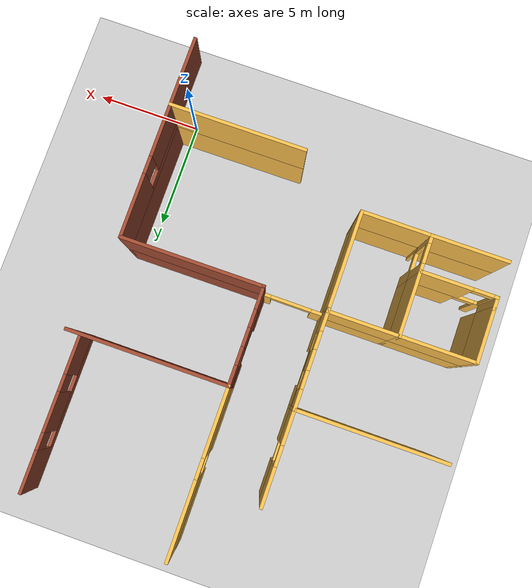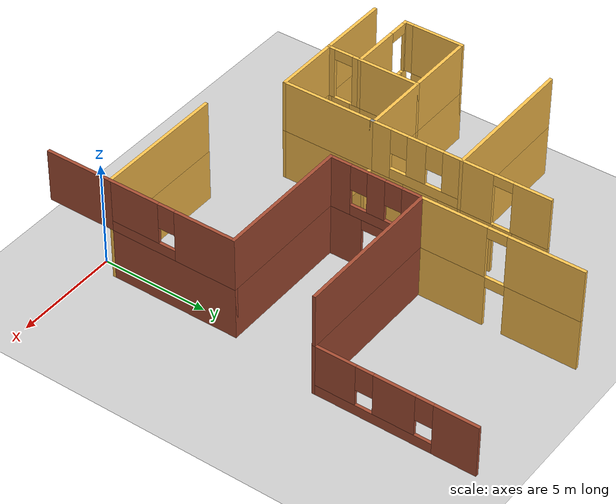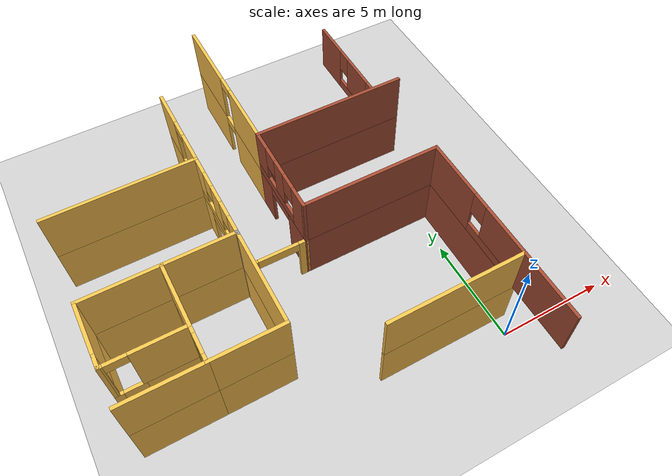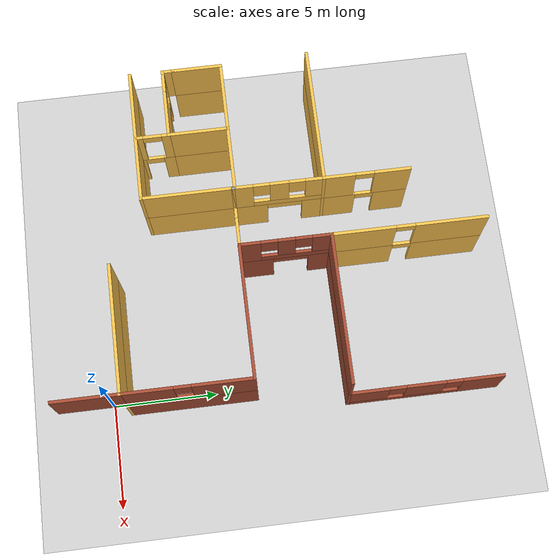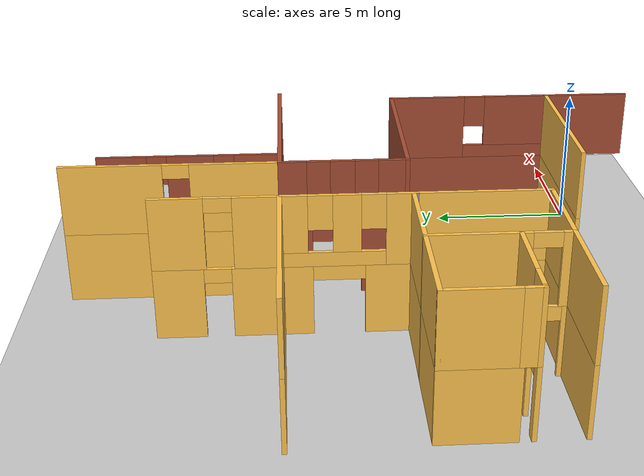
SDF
<sdf version="1.7">
 <world name="default">
  <model name="ground_plane">
   <static>1</static>
   <link name="link">
    <collision name="collision">
     <geometry><plane><normal>0 0 1</normal><size>100 100</size></plane></geometry>
     <surface>
      <contact><collide_bitmask>65535</collide_bitmask></contact>
      <friction><ode><mu>100</mu><mu2>50</mu2></ode></friction>
     </surface>
    </collision>
    <visual name="visual">
     <cast_shadows>0</cast_shadows>
     <geometry><plane><normal>0 0 1</normal><size>100 100</size></plane></geometry>
     <material>
      <script><uri>file://media/materials/scripts/gazebo.material</uri><name>Gazebo/Grey</name></script>
     </material>
    </visual>
   </link>
  </model>
  <model name="DepartmentBuilding">
   <pose>-25.6559 18.8293 0 0 -0 0</pose>
   <link name="Wall_160">
    <collision name="Wall_160_Collision">
     <geometry><box><size>2.5 0.15 2.5</size></box></geometry>
     <pose>0 0 1.25 0 -0 0</pose>
    </collision>
    <visual name="Wall_160_Visual">
     <pose>0 0 1.25 0 -0 0</pose>
     <geometry><box><size>2.5 0.15 2.5</size></box></geometry>
     <material>
      <script><uri>file://media/materials/scripts/gazebo.material</uri><name>Gazebo/Grey</name></script>
      <ambient>1 0.764706 0.305882 1</ambient>
     </material>
     <meta><layer>0</layer></meta>
    </visual>
    <pose>10.4694 -12.9446 0 0 -0 1.5708</pose>
   </link>
   <link name="Wall_161">
    <collision name="Wall_161_Collision">
     <geometry><box><size>3.5 0.15 2.5</size></box></geometry>
     <pose>0 0 1.25 0 -0 0</pose>
    </collision>
    <visual name="Wall_161_Visual">
     <pose>0 0 1.25 0 -0 0</pose>
     <geometry><box><size>3.5 0.15 2.5</size></box></geometry>
     <material>
      <script><uri>file://media/materials/scripts/gazebo.material</uri><name>Gazebo/Grey</name></script>
      <ambient>1 0.764706 0.305882 1</ambient>
     </material>
     <meta><layer>0</layer></meta>
    </visual>
    <pose>12.1444 -11.7696 0 0 -0 0</pose>
   </link>
   <link name="Wall_162">
    <collision name="Wall_162_Collision">
     <geometry><box><size>3 0.15 2.5</size></box></geometry>
     <pose>0 0 1.25 0 -0 0</pose>
    </collision>
    <visual name="Wall_162_Visual">
     <pose>0 0 1.25 0 -0 0</pose>
     <geometry><box><size>3 0.15 2.5</size></box></geometry>
     <material>
      <script><uri>file://media/materials/scripts/gazebo.material</uri><name>Gazebo/Grey</name></script>
      <ambient>1 0.764706 0.305882 1</ambient>
     </material>
     <meta><layer>0</layer></meta>
    </visual>
    <pose>13.8194 -13.1946 0 0 -0 -1.5708</pose>
   </link>
   <link name="Wall_164">
    <pose>12.1444 -14.6196 0 0 -0 3.14159</pose>
    <visual name="Wall_164_Visual_0">
     <pose>-0.632468 0 1.25 0 -0 0</pose>
     <geometry><box><size>2.23506 0.15 2.5</size></box></geometry>
     <material>
      <script><uri>file://media/materials/scripts/gazebo.material</uri><name>Gazebo/Grey</name></script>
      <ambient>1 0.764706 0.305882 1</ambient>
     </material>
     <meta><layer>0</layer></meta>
    </visual>
    <collision name="Wall_164_Collision_0">
     <geometry><box><size>2.23506 0.15 2.5</size></box></geometry>
     <pose>-0.632468 0 1.25 0 -0 0</pose>
    </collision>
    <visual name="Wall_164_Visual_1">
     <pose>1.56753 0 1.25 0 -0 0</pose>
     <geometry><box><size>0.364937 0.15 2.5</size></box></geometry>
     <material>
      <script><uri>file://media/materials/scripts/gazebo.material</uri><name>Gazebo/Grey</name></script>
      <ambient>1 0.764706 0.305882 1</ambient>
     </material>
     <meta><layer>0</layer></meta>
    </visual>
    <collision name="Wall_164_Collision_1">
     <geometry><box><size>0.364937 0.15 2.5</size></box></geometry>
     <pose>1.56753 0 1.25 0 -0 0</pose>
    </collision>
    <visual name="Wall_164_Visual_2">
     <pose>0.935063 0 2.25 0 -0 0</pose>
     <geometry><box><size>0.9 0.15 0.5</size></box></geometry>
     <material>
      <script><uri>file://media/materials/scripts/gazebo.material</uri><name>Gazebo/Grey</name></script>
      <ambient>1 0.764706 0.305882 1</ambient>
     </material>
     <meta><layer>0</layer></meta>
    </visual>
    <collision name="Wall_164_Collision_2">
     <geometry><box><size>0.9 0.15 0.5</size></box></geometry>
     <pose>0.935063 0 2.25 0 -0 0</pose>
    </collision>
   </link>
   <link name="Wall_167">
    <pose>13.8194 -15.4196 0 0 -0 -1.5708</pose>
    <visual name="Wall_167_Visual_0">
     <pose>-0.602589 0 1.25 0 -0 0</pose>
     <geometry><box><size>0.544823 0.15 2.5</size></box></geometry>
     <material>
      <script><uri>file://media/materials/scripts/gazebo.material</uri><name>Gazebo/Grey</name></script>
      <ambient>1 0.764706 0.305882 1</ambient>
     </material>
     <meta><layer>0</layer></meta>
    </visual>
    <collision name="Wall_167_Collision_0">
     <geometry><box><size>0.544823 0.15 2.5</size></box></geometry>
     <pose>-0.602589 0 1.25 0 -0 0</pose>
    </collision>
    <visual name="Wall_167_Visual_1">
     <pose>0.722411 0 1.25 0 -0 0</pose>
     <geometry><box><size>0.305177 0.15 2.5</size></box></geometry>
     <material>
      <script><uri>file://media/materials/scripts/gazebo.material</uri><name>Gazebo/Grey</name></script>
      <ambient>1 0.764706 0.305882 1</ambient>
     </material>
     <meta><layer>0</layer></meta>
    </visual>
    <collision name="Wall_167_Collision_1">
     <geometry><box><size>0.305177 0.15 2.5</size></box></geometry>
     <pose>0.722411 0 1.25 0 -0 0</pose>
    </collision>
    <visual name="Wall_167_Visual_2">
     <pose>0.119823 0 2.25 0 -0 0</pose>
     <geometry><box><size>0.9 0.15 0.5</size></box></geometry>
     <material>
      <script><uri>file://media/materials/scripts/gazebo.material</uri><name>Gazebo/Grey</name></script>
      <ambient>1 0.764706 0.305882 1</ambient>
     </material>
     <meta><layer>0</layer></meta>
    </visual>
    <collision name="Wall_167_Collision_2">
     <geometry><box><size>0.9 0.15 0.5</size></box></geometry>
     <pose>0.119823 0 2.25 0 -0 0</pose>
    </collision>
   </link>
   <link name="Wall_168">
    <collision name="Wall_168_Collision">
     <geometry><box><size>3.5 0.15 2.5</size></box></geometry>
     <pose>0 0 1.25 0 -0 0</pose>
    </collision>
    <visual name="Wall_168_Visual">
     <pose>0 0 1.25 0 -0 0</pose>
     <geometry><box><size>3.5 0.15 2.5</size></box></geometry>
     <material>
      <script><uri>file://media/materials/scripts/gazebo.material</uri><name>Gazebo/Grey</name></script>
      <ambient>1 0.764706 0.305882 1</ambient>
     </material>
     <meta><layer>0</layer></meta>
    </visual>
    <pose>12.1444 -16.2196 0 0 -0 3.14159</pose>
   </link>
   <link name="Wall_171">
    <collision name="Wall_171_Collision">
     <geometry><box><size>3.25 0.15 2.5</size></box></geometry>
     <pose>0 0 1.25 0 -0 0</pose>
    </collision>
    <visual name="Wall_171_Visual">
     <pose>0 0 1.25 0 -0 0</pose>
     <geometry><box><size>3.25 0.15 2.5</size></box></geometry>
     <material>
      <script><uri>file://media/materials/scripts/gazebo.material</uri><name>Gazebo/Grey</name></script>
      <ambient>1 0.764706 0.305882 1</ambient>
     </material>
     <meta><layer>0</layer></meta>
    </visual>
    <pose>15.3694 -11.7696 0 0 -0 0</pose>
   </link>
   <link name="Wall_172">
    <collision name="Wall_172_Collision">
     <geometry><box><size>0.232609 0.15 2.5</size></box></geometry>
     <pose>0 0 1.25 0 -0 0</pose>
    </collision>
    <visual name="Wall_172_Visual">
     <pose>0 0 1.25 0 -0 0</pose>
     <geometry><box><size>0.232609 0.15 2.5</size></box></geometry>
     <material>
      <script><uri>file://media/materials/scripts/gazebo.material</uri><name>Gazebo/Grey</name></script>
      <ambient>1 1 1 1</ambient>
     </material>
     <meta><layer>0</layer></meta>
    </visual>
    <pose>16.9194 -11.8109 0 0 -0 -1.5708</pose>
   </link>
   <link name="Wall_173">
    <collision name="Wall_173_Collision">
     <geometry><box><size>4.51739 0.15 2.5</size></box></geometry>
     <pose>0 0 1.25 0 -0 0</pose>
    </collision>
    <visual name="Wall_173_Visual">
     <pose>0 0 1.25 0 -0 0</pose>
     <geometry><box><size>4.51739 0.15 2.5</size></box></geometry>
     <material>
      <script><uri>file://media/materials/scripts/gazebo.material</uri><name>Gazebo/Grey</name></script>
      <ambient>1 0.764706 0.305882 1</ambient>
     </material>
     <meta><layer>0</layer></meta>
    </visual>
    <pose>16.9194 -14.0359 0 0 -0 -1.5708</pose>
   </link>
   <link name="Wall_174">
    <collision name="Wall_174_Collision">
     <geometry><box><size>3.25 0.15 2.5</size></box></geometry>
     <pose>0 0 1.25 0 -0 0</pose>
    </collision>
    <visual name="Wall_174_Visual">
     <pose>0 0 1.25 0 -0 0</pose>
     <geometry><box><size>3.25 0.15 2.5</size></box></geometry>
     <material>
      <script><uri>file://media/materials/scripts/gazebo.material</uri><name>Gazebo/Grey</name></script>
      <ambient>1 0.764706 0.305882 1</ambient>
     </material>
     <meta><layer>0</layer></meta>
    </visual>
    <pose>15.3694 -16.2196 0 0 -0 3.14159</pose>
   </link>
   <link name="Wall_176">
    <pose>18.3444 -11.8609 0 0 -0 -0.006102</pose>
    <visual name="Wall_176_Visual_0">
     <pose>-1.17068 0 1.25 0 -0 0</pose>
     <geometry><box><size>0.658641 0.15 2.5</size></box></geometry>
     <material>
      <script><uri>file://media/materials/scripts/gazebo.material</uri><name>Gazebo/Grey</name></script>
      <ambient>1 0.764706 0.305882 1</ambient>
     </material>
     <meta><layer>0</layer></meta>
    </visual>
    <collision name="Wall_176_Collision_0">
     <geometry><box><size>0.658641 0.15 2.5</size></box></geometry>
     <pose>-1.17068 0 1.25 0 -0 0</pose>
    </collision>
    <visual name="Wall_176_Visual_1">
     <pose>1.27932 0 1.25 0 -0 0</pose>
     <geometry><box><size>0.441359 0.15 2.5</size></box></geometry>
     <material>
      <script><uri>file://media/materials/scripts/gazebo.material</uri><name>Gazebo/Grey</name></script>
      <ambient>1 0.764706 0.305882 1</ambient>
     </material>
     <meta><layer>0</layer></meta>
    </visual>
    <collision name="Wall_176_Collision_1">
     <geometry><box><size>0.441359 0.15 2.5</size></box></geometry>
     <pose>1.27932 0 1.25 0 -0 0</pose>
    </collision>
    <visual name="Wall_176_Visual_2">
     <pose>0.108641 0 2.25 0 -0 0</pose>
     <geometry><box><size>1.9 0.15 0.5</size></box></geometry>
     <material>
      <script><uri>file://media/materials/scripts/gazebo.material</uri><name>Gazebo/Grey</name></script>
      <ambient>1 0.764706 0.305882 1</ambient>
     </material>
     <meta><layer>0</layer></meta>
    </visual>
    <collision name="Wall_176_Collision_2">
     <geometry><box><size>1.9 0.15 0.5</size></box></geometry>
     <pose>0.108641 0 2.25 0 -0 0</pose>
    </collision>
   </link>
   <link name="Wall_178">
    <pose>19.7694 -9.69464 0 0 -0 1.5708</pose>
    <visual name="Wall_178_Visual_0">
     <pose>-1.42314 0 1.25 0 -0 0</pose>
     <geometry><box><size>1.65373 0.15 2.5</size></box></geometry>
     <material>
      <script><uri>file://media/materials/scripts/gazebo.material</uri><name>Gazebo/Bricks</name></script>
      <ambient>1 1 1 1</ambient>
     </material>
     <meta><layer>0</layer></meta>
    </visual>
    <collision name="Wall_178_Collision_0">
     <geometry><box><size>1.65373 0.15 2.5</size></box></geometry>
     <pose>-1.42314 0 1.25 0 -0 0</pose>
    </collision>
    <visual name="Wall_178_Visual_1">
     <pose>1.67686 0 1.25 0 -0 0</pose>
     <geometry><box><size>1.14627 0.15 2.5</size></box></geometry>
     <material>
      <script><uri>file://media/materials/scripts/gazebo.material</uri><name>Gazebo/Bricks</name></script>
      <ambient>1 1 1 1</ambient>
     </material>
     <meta><layer>0</layer></meta>
    </visual>
    <collision name="Wall_178_Collision_1">
     <geometry><box><size>1.14627 0.15 2.5</size></box></geometry>
     <pose>1.67686 0 1.25 0 -0 0</pose>
    </collision>
    <visual name="Wall_178_Visual_2">
     <pose>0.253728 0 2.25 0 -0 0</pose>
     <geometry><box><size>1.7 0.15 0.5</size></box></geometry>
     <material>
      <script><uri>file://media/materials/scripts/gazebo.material</uri><name>Gazebo/Bricks</name></script>
      <ambient>1 1 1 1</ambient>
     </material>
     <meta><layer>0</layer></meta>
    </visual>
    <collision name="Wall_178_Collision_2">
     <geometry><box><size>1.7 0.15 0.5</size></box></geometry>
     <pose>0.253728 0 2.25 0 -0 0</pose>
    </collision>
   </link>
   <link name="Wall_180">
    <collision name="Wall_180_Collision">
     <geometry><box><size>6.5 0.15 2.5</size></box></geometry>
     <pose>0 0 1.25 0 -0 0</pose>
    </collision>
    <visual name="Wall_180_Visual">
     <pose>0 0 1.25 0 -0 0</pose>
     <geometry><box><size>6.5 0.15 2.5</size></box></geometry>
     <material>
      <script><uri>file://media/materials/scripts/gazebo.material</uri><name>Gazebo/Bricks</name></script>
      <ambient>1 1 1 1</ambient>
     </material>
     <meta><layer>0</layer></meta>
    </visual>
    <pose>22.9444 -11.8696 0 0 -0 0</pose>
   </link>
   <link name="Wall_182">
    <collision name="Wall_182_Collision">
     <geometry><box><size>6.25 0.15 2.5</size></box></geometry>
     <pose>0 0 1.25 0 -0 0</pose>
    </collision>
    <visual name="Wall_182_Visual">
     <pose>0 0 1.25 0 -0 0</pose>
     <geometry><box><size>6.25 0.15 2.5</size></box></geometry>
     <material>
      <script><uri>file://media/materials/scripts/gazebo.material</uri><name>Gazebo/Bricks</name></script>
      <ambient>1 1 1 1</ambient>
     </material>
     <meta><layer>0</layer></meta>
    </visual>
    <pose>26.1194 -14.9196 0 0 -0 -1.5708</pose>
   </link>
   <link name="Wall_183">
    <collision name="Wall_183_Collision">
     <geometry><box><size>6.25 0.15 2.5</size></box></geometry>
     <pose>0 0 1.25 0 -0 0</pose>
    </collision>
    <visual name="Wall_183_Visual">
     <pose>0 0 1.25 0 -0 0</pose>
     <geometry><box><size>6.25 0.15 2.5</size></box></geometry>
     <material>
      <script><uri>file://media/materials/scripts/gazebo.material</uri><name>Gazebo/Grey</name></script>
      <ambient>1 0.764706 0.305882 1</ambient>
     </material>
     <meta><layer>0</layer></meta>
    </visual>
    <pose>23.0694 -17.9696 0 0 -0 3.14159</pose>
   </link>
   <link name="Wall_187">
    <pose>19.7694 -3.84464 0 0 -0 1.5708</pose>
    <visual name="Wall_187_Visual_0">
     <pose>-2.16942 0 1.25 0 -0 0</pose>
     <geometry><box><size>3.16116 0.15 2.5</size></box></geometry>
     <material>
      <script><uri>file://media/materials/scripts/gazebo.material</uri><name>Gazebo/Grey</name></script>
      <ambient>1 0.764706 0.305882 1</ambient>
     </material>
     <meta><layer>0</layer></meta>
    </visual>
    <collision name="Wall_187_Collision_0">
     <geometry><box><size>3.16116 0.15 2.5</size></box></geometry>
     <pose>-2.16942 0 1.25 0 -0 0</pose>
    </collision>
    <visual name="Wall_187_Visual_1">
     <pose>2.03058 0 1.25 0 -0 0</pose>
     <geometry><box><size>3.43884 0.15 2.5</size></box></geometry>
     <material>
      <script><uri>file://media/materials/scripts/gazebo.material</uri><name>Gazebo/Grey</name></script>
      <ambient>1 0.764706 0.305882 1</ambient>
     </material>
     <meta><layer>0</layer></meta>
    </visual>
    <collision name="Wall_187_Collision_1">
     <geometry><box><size>3.43884 0.15 2.5</size></box></geometry>
     <pose>2.03058 0 1.25 0 -0 0</pose>
    </collision>
    <visual name="Wall_187_Visual_2">
     <pose>-0.138841 0 2.25 0 -0 0</pose>
     <geometry><box><size>0.9 0.15 0.5</size></box></geometry>
     <material>
      <script><uri>file://media/materials/scripts/gazebo.material</uri><name>Gazebo/Grey</name></script>
      <ambient>1 0.764706 0.305882 1</ambient>
     </material>
     <meta><layer>0</layer></meta>
    </visual>
    <collision name="Wall_187_Collision_2">
     <geometry><box><size>0.9 0.15 0.5</size></box></geometry>
     <pose>-0.138841 0 2.25 0 -0 0</pose>
    </collision>
   </link>
   <link name="Wall_189">
    <pose>26.8694 -3.84464 0 0 -0 -1.5708</pose>
    <visual name="Wall_189_Visual_0">
     <pose>-2.74658 0 1.25 0 -0 0</pose>
     <geometry><box><size>2.00684 0.15 2.5</size></box></geometry>
     <material>
      <script><uri>file://media/materials/scripts/gazebo.material</uri><name>Gazebo/Bricks</name></script>
      <ambient>1 1 1 1</ambient>
     </material>
     <meta><layer>0</layer></meta>
    </visual>
    <collision name="Wall_189_Collision_0">
     <geometry><box><size>2.00684 0.15 2.5</size></box></geometry>
     <pose>-2.74658 0 1.25 0 -0 0</pose>
    </collision>
    <visual name="Wall_189_Visual_1">
     <pose>1.00342 0 0.25 0 -0 0</pose>
     <geometry><box><size>5.49316 0.15 0.5</size></box></geometry>
     <material>
      <script><uri>file://media/materials/scripts/gazebo.material</uri><name>Gazebo/Bricks</name></script>
      <ambient>1 1 1 1</ambient>
     </material>
     <meta><layer>0</layer></meta>
    </visual>
    <collision name="Wall_189_Collision_1">
     <geometry><box><size>5.49316 0.15 0.5</size></box></geometry>
     <pose>1.00342 0 0.25 0 -0 0</pose>
    </collision>
    <visual name="Wall_189_Visual_2">
     <pose>0.003578 0 1.5 0 -0 0</pose>
     <geometry><box><size>1.89347 0.15 2</size></box></geometry>
     <material>
      <script><uri>file://media/materials/scripts/gazebo.material</uri><name>Gazebo/Bricks</name></script>
      <ambient>1 1 1 1</ambient>
     </material>
     <meta><layer>0</layer></meta>
    </visual>
    <collision name="Wall_189_Collision_2">
     <geometry><box><size>1.89347 0.15 2</size></box></geometry>
     <pose>0.003578 0 1.5 0 -0 0</pose>
    </collision>
    <visual name="Wall_189_Visual_3">
     <pose>2.75016 0 1.5 0 -0 0</pose>
     <geometry><box><size>1.99969 0.15 2</size></box></geometry>
     <material>
      <script><uri>file://media/materials/scripts/gazebo.material</uri><name>Gazebo/Bricks</name></script>
      <ambient>1 1 1 1</ambient>
     </material>
     <meta><layer>0</layer></meta>
    </visual>
    <collision name="Wall_189_Collision_3">
     <geometry><box><size>1.99969 0.15 2</size></box></geometry>
     <pose>2.75016 0 1.5 0 -0 0</pose>
    </collision>
    <visual name="Wall_189_Visual_4">
     <pose>-1.34316 0 1.9 0 -0 0</pose>
     <geometry><box><size>0.8 0.15 1.2</size></box></geometry>
     <material>
      <script><uri>file://media/materials/scripts/gazebo.material</uri><name>Gazebo/Bricks</name></script>
      <ambient>1 1 1 1</ambient>
     </material>
     <meta><layer>0</layer></meta>
    </visual>
    <collision name="Wall_189_Collision_4">
     <geometry><box><size>0.8 0.15 1.2</size></box></geometry>
     <pose>-1.34316 0 1.9 0 -0 0</pose>
    </collision>
    <visual name="Wall_189_Visual_5">
     <pose>1.35031 0 1.9 0 -0 0</pose>
     <geometry><box><size>0.8 0.15 1.2</size></box></geometry>
     <material>
      <script><uri>file://media/materials/scripts/gazebo.material</uri><name>Gazebo/Bricks</name></script>
      <ambient>1 1 1 1</ambient>
     </material>
     <meta><layer>0</layer></meta>
    </visual>
    <collision name="Wall_189_Collision_5">
     <geometry><box><size>0.8 0.15 1.2</size></box></geometry>
     <pose>1.35031 0 1.9 0 -0 0</pose>
    </collision>
   </link>
   <link name="Wall_190">
    <collision name="Wall_190_Collision">
     <geometry><box><size>7.25 0.15 2.5</size></box></geometry>
     <pose>0 0 1.25 0 -0 0</pose>
    </collision>
    <visual name="Wall_190_Visual">
     <pose>0 0 1.25 0 -0 0</pose>
     <geometry><box><size>7.25 0.15 2.5</size></box></geometry>
     <material>
      <script><uri>file://media/materials/scripts/gazebo.material</uri><name>Gazebo/Bricks</name></script>
      <ambient>1 1 1 1</ambient>
     </material>
     <meta><layer>0</layer></meta>
    </visual>
    <pose>23.3194 -7.51964 0 0 -0 3.14159</pose>
   </link>
   <link name="Wall_193">
    <pose>16.9194 -9.68594 0 0 -0 1.5708</pose>
    <visual name="Wall_193_Visual_0">
     <pose>-1.40091 0 1.25 0 -0 0</pose>
     <geometry><box><size>1.69819 0.15 2.5</size></box></geometry>
     <material>
      <script><uri>file://media/materials/scripts/gazebo.material</uri><name>Gazebo/Grey</name></script>
      <ambient>1 0.764706 0.305882 1</ambient>
     </material>
     <meta><layer>0</layer></meta>
    </visual>
    <collision name="Wall_193_Collision_0">
     <geometry><box><size>1.69819 0.15 2.5</size></box></geometry>
     <pose>-1.40091 0 1.25 0 -0 0</pose>
    </collision>
    <visual name="Wall_193_Visual_1">
     <pose>1.69909 0 1.25 0 -0 0</pose>
     <geometry><box><size>1.10181 0.15 2.5</size></box></geometry>
     <material>
      <script><uri>file://media/materials/scripts/gazebo.material</uri><name>Gazebo/Grey</name></script>
      <ambient>1 0.764706 0.305882 1</ambient>
     </material>
     <meta><layer>0</layer></meta>
    </visual>
    <collision name="Wall_193_Collision_1">
     <geometry><box><size>1.10181 0.15 2.5</size></box></geometry>
     <pose>1.69909 0 1.25 0 -0 0</pose>
    </collision>
    <visual name="Wall_193_Visual_2">
     <pose>0.298185 0 2.25 0 -0 0</pose>
     <geometry><box><size>1.7 0.15 0.5</size></box></geometry>
     <material>
      <script><uri>file://media/materials/scripts/gazebo.material</uri><name>Gazebo/Grey</name></script>
      <ambient>1 0.764706 0.305882 1</ambient>
     </material>
     <meta><layer>0</layer></meta>
    </visual>
    <collision name="Wall_193_Collision_2">
     <geometry><box><size>1.7 0.15 0.5</size></box></geometry>
     <pose>0.298185 0 2.25 0 -0 0</pose>
    </collision>
   </link>
   <link name="Wall_195">
    <collision name="Wall_195_Collision">
     <geometry><box><size>6.75 0.15 2.5</size></box></geometry>
     <pose>0 0 1.25 0 -0 0</pose>
    </collision>
    <visual name="Wall_195_Visual">
     <pose>0 0 1.25 0 -0 0</pose>
     <geometry><box><size>6.75 0.15 2.5</size></box></geometry>
     <material>
      <script><uri>file://media/materials/scripts/gazebo.material</uri><name>Gazebo/Grey</name></script>
      <ambient>1 0.764706 0.305882 1</ambient>
     </material>
     <meta><layer>0</layer></meta>
    </visual>
    <pose>13.6194 -7.51094 0 0 -0 3.14159</pose>
   </link>
   <link name="Wall_198">
    <pose>16.9194 -5.46094 0 0 -0 -1.5708</pose>
    <visual name="Wall_198_Visual_0">
     <pose>-1.29295 0 1.25 0 -0 0</pose>
     <geometry><box><size>1.66409 0.15 2.5</size></box></geometry>
     <material>
      <script><uri>file://media/materials/scripts/gazebo.material</uri><name>Gazebo/Grey</name></script>
      <ambient>1 0.764706 0.305882 1</ambient>
     </material>
     <meta><layer>0</layer></meta>
    </visual>
    <collision name="Wall_198_Collision_0">
     <geometry><box><size>1.66409 0.15 2.5</size></box></geometry>
     <pose>-1.29295 0 1.25 0 -0 0</pose>
    </collision>
    <visual name="Wall_198_Visual_1">
     <pose>1.28205 0 1.25 0 -0 0</pose>
     <geometry><box><size>1.68591 0.15 2.5</size></box></geometry>
     <material>
      <script><uri>file://media/materials/scripts/gazebo.material</uri><name>Gazebo/Grey</name></script>
      <ambient>1 0.764706 0.305882 1</ambient>
     </material>
     <meta><layer>0</layer></meta>
    </visual>
    <collision name="Wall_198_Collision_1">
     <geometry><box><size>1.68591 0.15 2.5</size></box></geometry>
     <pose>1.28205 0 1.25 0 -0 0</pose>
    </collision>
    <visual name="Wall_198_Visual_2">
     <pose>-0.010906 0 2.25 0 -0 0</pose>
     <geometry><box><size>0.9 0.15 0.5</size></box></geometry>
     <material>
      <script><uri>file://media/materials/scripts/gazebo.material</uri><name>Gazebo/Grey</name></script>
      <ambient>1 0.764706 0.305882 1</ambient>
     </material>
     <meta><layer>0</layer></meta>
    </visual>
    <collision name="Wall_198_Collision_2">
     <geometry><box><size>0.9 0.15 0.5</size></box></geometry>
     <pose>-0.010906 0 2.25 0 -0 0</pose>
    </collision>
   </link>
   <link name="Wall_859">
    <collision name="Wall_859_Collision">
     <geometry><box><size>2.5 0.15 2.5</size></box></geometry>
     <pose>0 0 1.25 0 -0 0</pose>
    </collision>
    <visual name="Wall_859_Visual">
     <pose>0 0 1.25 0 -0 0</pose>
     <geometry><box><size>2.5 0.15 2.5</size></box></geometry>
     <material>
      <script><uri>file://media/materials/scripts/gazebo.material</uri><name>Gazebo/Grey</name></script>
      <ambient>1 0.764706 0.305882 1</ambient>
     </material>
     <meta><layer>1</layer></meta>
    </visual>
    <pose>10.4694 -12.9446 2.5 0 -0 1.5708</pose>
   </link>
   <link name="Wall_860">
    <collision name="Wall_860_Collision">
     <geometry><box><size>3.5 0.15 2.5</size></box></geometry>
     <pose>0 0 1.25 0 -0 0</pose>
    </collision>
    <visual name="Wall_860_Visual">
     <pose>0 0 1.25 0 -0 0</pose>
     <geometry><box><size>3.5 0.15 2.5</size></box></geometry>
     <material>
      <script><uri>file://media/materials/scripts/gazebo.material</uri><name>Gazebo/Grey</name></script>
      <ambient>1 0.764706 0.305882 1</ambient>
     </material>
     <meta><layer>1</layer></meta>
    </visual>
    <pose>12.1444 -11.7696 2.5 0 -0 0</pose>
   </link>
   <link name="Wall_861">
    <collision name="Wall_861_Collision">
     <geometry><box><size>3 0.15 2.5</size></box></geometry>
     <pose>0 0 1.25 0 -0 0</pose>
    </collision>
    <visual name="Wall_861_Visual">
     <pose>0 0 1.25 0 -0 0</pose>
     <geometry><box><size>3 0.15 2.5</size></box></geometry>
     <material>
      <script><uri>file://media/materials/scripts/gazebo.material</uri><name>Gazebo/Grey</name></script>
      <ambient>1 0.764706 0.305882 1</ambient>
     </material>
     <meta><layer>1</layer></meta>
    </visual>
    <pose>13.8194 -13.1946 2.5 0 -0 -1.5708</pose>
   </link>
   <link name="Wall_862">
    <pose>12.1444 -14.6196 2.5 0 -0 3.14159</pose>
    <visual name="Wall_862_Visual_0">
     <pose>-0.560082 0 1.25 0 -0 0</pose>
     <geometry><box><size>2.37984 0.15 2.5</size></box></geometry>
     <material>
      <script><uri>file://media/materials/scripts/gazebo.material</uri><name>Gazebo/Grey</name></script>
      <ambient>1 0.764706 0.305882 1</ambient>
     </material>
     <meta><layer>1</layer></meta>
    </visual>
    <collision name="Wall_862_Collision_0">
     <geometry><box><size>2.37984 0.15 2.5</size></box></geometry>
     <pose>-0.560082 0 1.25 0 -0 0</pose>
    </collision>
    <visual name="Wall_862_Visual_1">
     <pose>1.63992 0 1.25 0 -0 0</pose>
     <geometry><box><size>0.220163 0.15 2.5</size></box></geometry>
     <material>
      <script><uri>file://media/materials/scripts/gazebo.material</uri><name>Gazebo/Grey</name></script>
      <ambient>1 0.764706 0.305882 1</ambient>
     </material>
     <meta><layer>1</layer></meta>
    </visual>
    <collision name="Wall_862_Collision_1">
     <geometry><box><size>0.220163 0.15 2.5</size></box></geometry>
     <pose>1.63992 0 1.25 0 -0 0</pose>
    </collision>
    <visual name="Wall_862_Visual_2">
     <pose>1.07984 0 2.25 0 -0 0</pose>
     <geometry><box><size>0.9 0.15 0.5</size></box></geometry>
     <material>
      <script><uri>file://media/materials/scripts/gazebo.material</uri><name>Gazebo/Grey</name></script>
      <ambient>1 0.764706 0.305882 1</ambient>
     </material>
     <meta><layer>1</layer></meta>
    </visual>
    <collision name="Wall_862_Collision_2">
     <geometry><box><size>0.9 0.15 0.5</size></box></geometry>
     <pose>1.07984 0 2.25 0 -0 0</pose>
    </collision>
   </link>
   <link name="Wall_863">
    <collision name="Wall_863_Collision">
     <geometry><box><size>0.65 0.15 2.5</size></box></geometry>
     <pose>0 0 1.25 0 -0 0</pose>
    </collision>
    <visual name="Wall_863_Visual">
     <pose>0 0 1.25 0 -0 0</pose>
     <geometry><box><size>0.65 0.15 2.5</size></box></geometry>
     <material>
      <script><uri>file://media/materials/scripts/gazebo.material</uri><name>Gazebo/Grey</name></script>
      <ambient>1 0.764706 0.305882 1</ambient>
     </material>
     <meta><layer>1</layer></meta>
    </visual>
    <pose>10.4694 -14.3696 2.5 0 -0 1.5708</pose>
   </link>
   <link name="Wall_864">
    <pose>13.8194 -15.4196 2.5 0 -0 -1.5708</pose>
    <visual name="Wall_864_Visual_0">
     <pose>-0.659715 0 1.25 0 -0 0</pose>
     <geometry><box><size>0.43057 0.15 2.5</size></box></geometry>
     <material>
      <script><uri>file://media/materials/scripts/gazebo.material</uri><name>Gazebo/Grey</name></script>
      <ambient>1 0.764706 0.305882 1</ambient>
     </material>
     <meta><layer>1</layer></meta>
    </visual>
    <collision name="Wall_864_Collision_0">
     <geometry><box><size>0.43057 0.15 2.5</size></box></geometry>
     <pose>-0.659715 0 1.25 0 -0 0</pose>
    </collision>
    <visual name="Wall_864_Visual_1">
     <pose>0.665285 0 1.25 0 -0 0</pose>
     <geometry><box><size>0.41943 0.15 2.5</size></box></geometry>
     <material>
      <script><uri>file://media/materials/scripts/gazebo.material</uri><name>Gazebo/Grey</name></script>
      <ambient>1 0.764706 0.305882 1</ambient>
     </material>
     <meta><layer>1</layer></meta>
    </visual>
    <collision name="Wall_864_Collision_1">
     <geometry><box><size>0.41943 0.15 2.5</size></box></geometry>
     <pose>0.665285 0 1.25 0 -0 0</pose>
    </collision>
    <visual name="Wall_864_Visual_2">
     <pose>0.00557 0 2.25 0 -0 0</pose>
     <geometry><box><size>0.9 0.15 0.5</size></box></geometry>
     <material>
      <script><uri>file://media/materials/scripts/gazebo.material</uri><name>Gazebo/Grey</name></script>
      <ambient>1 0.764706 0.305882 1</ambient>
     </material>
     <meta><layer>1</layer></meta>
    </visual>
    <collision name="Wall_864_Collision_2">
     <geometry><box><size>0.9 0.15 0.5</size></box></geometry>
     <pose>0.00557 0 2.25 0 -0 0</pose>
    </collision>
   </link>
   <link name="Wall_865">
    <collision name="Wall_865_Collision">
     <geometry><box><size>3.5 0.15 2.5</size></box></geometry>
     <pose>0 0 1.25 0 -0 0</pose>
    </collision>
    <visual name="Wall_865_Visual">
     <pose>0 0 1.25 0 -0 0</pose>
     <geometry><box><size>3.5 0.15 2.5</size></box></geometry>
     <material>
      <script><uri>file://media/materials/scripts/gazebo.material</uri><name>Gazebo/Grey</name></script>
      <ambient>1 0.764706 0.305882 1</ambient>
     </material>
     <meta><layer>1</layer></meta>
    </visual>
    <pose>12.1444 -16.2196 2.5 0 -0 3.14159</pose>
   </link>
   <link name="Wall_867">
    <collision name="Wall_867_Collision">
     <geometry><box><size>3.25 0.15 2.5</size></box></geometry>
     <pose>0 0 1.25 0 -0 0</pose>
    </collision>
    <visual name="Wall_867_Visual">
     <pose>0 0 1.25 0 -0 0</pose>
     <geometry><box><size>3.25 0.15 2.5</size></box></geometry>
     <material>
      <script><uri>file://media/materials/scripts/gazebo.material</uri><name>Gazebo/Grey</name></script>
      <ambient>1 0.764706 0.305882 1</ambient>
     </material>
     <meta><layer>1</layer></meta>
    </visual>
    <pose>15.3694 -11.7696 2.5 0 -0 0</pose>
   </link>
   <link name="Wall_868">
    <collision name="Wall_868_Collision">
     <geometry><box><size>0.232609 0.15 2.5</size></box></geometry>
     <pose>0 0 1.25 0 -0 0</pose>
    </collision>
    <visual name="Wall_868_Visual">
     <pose>0 0 1.25 0 -0 0</pose>
     <geometry><box><size>0.232609 0.15 2.5</size></box></geometry>
     <material>
      <script><uri>file://media/materials/scripts/gazebo.material</uri><name>Gazebo/Grey</name></script>
      <ambient>1 1 1 1</ambient>
     </material>
     <meta><layer>1</layer></meta>
    </visual>
    <pose>16.9194 -11.8109 2.5 0 -0 -1.5708</pose>
   </link>
   <link name="Wall_869">
    <collision name="Wall_869_Collision">
     <geometry><box><size>4.51739 0.15 2.5</size></box></geometry>
     <pose>0 0 1.25 0 -0 0</pose>
    </collision>
    <visual name="Wall_869_Visual">
     <pose>0 0 1.25 0 -0 0</pose>
     <geometry><box><size>4.51739 0.15 2.5</size></box></geometry>
     <material>
      <script><uri>file://media/materials/scripts/gazebo.material</uri><name>Gazebo/Grey</name></script>
      <ambient>1 0.764706 0.305882 1</ambient>
     </material>
     <meta><layer>1</layer></meta>
    </visual>
    <pose>16.9194 -14.0359 2.5 0 -0 -1.5708</pose>
   </link>
   <link name="Wall_870">
    <collision name="Wall_870_Collision">
     <geometry><box><size>3.25 0.15 2.5</size></box></geometry>
     <pose>0 0 1.25 0 -0 0</pose>
    </collision>
    <visual name="Wall_870_Visual">
     <pose>0 0 1.25 0 -0 0</pose>
     <geometry><box><size>3.25 0.15 2.5</size></box></geometry>
     <material>
      <script><uri>file://media/materials/scripts/gazebo.material</uri><name>Gazebo/Grey</name></script>
      <ambient>1 0.764706 0.305882 1</ambient>
     </material>
     <meta><layer>1</layer></meta>
    </visual>
    <pose>15.3694 -16.2196 2.5 0 -0 3.14159</pose>
   </link>
   <link name="Wall_872">
    <pose>19.7694 -9.69464 2.5 0 -0 1.5708</pose>
    <visual name="Wall_872_Visual_0">
     <pose>-1.71124 0 1.25 0 -0 0</pose>
     <geometry><box><size>1.07752 0.15 2.5</size></box></geometry>
     <material>
      <script><uri>file://media/materials/scripts/gazebo.material</uri><name>Gazebo/Bricks</name></script>
      <ambient>1 1 1 1</ambient>
     </material>
     <meta><layer>1</layer></meta>
    </visual>
    <collision name="Wall_872_Collision_0">
     <geometry><box><size>1.07752 0.15 2.5</size></box></geometry>
     <pose>-1.71124 0 1.25 0 -0 0</pose>
    </collision>
    <visual name="Wall_872_Visual_1">
     <pose>0.538758 0 0.25 0 -0 0</pose>
     <geometry><box><size>3.42248 0.15 0.5</size></box></geometry>
     <material>
      <script><uri>file://media/materials/scripts/gazebo.material</uri><name>Gazebo/Bricks</name></script>
      <ambient>1 1 1 1</ambient>
     </material>
     <meta><layer>1</layer></meta>
    </visual>
    <collision name="Wall_872_Collision_1">
     <geometry><box><size>3.42248 0.15 0.5</size></box></geometry>
     <pose>0.538758 0 0.25 0 -0 0</pose>
    </collision>
    <visual name="Wall_872_Visual_2">
     <pose>0.04955 0 1.5 0 -0 0</pose>
     <geometry><box><size>0.844066 0.15 2</size></box></geometry>
     <material>
      <script><uri>file://media/materials/scripts/gazebo.material</uri><name>Gazebo/Bricks</name></script>
      <ambient>1 1 1 1</ambient>
     </material>
     <meta><layer>1</layer></meta>
    </visual>
    <collision name="Wall_872_Collision_2">
     <geometry><box><size>0.844066 0.15 2</size></box></geometry>
     <pose>0.04955 0 1.5 0 -0 0</pose>
    </collision>
    <visual name="Wall_872_Visual_3">
     <pose>1.76079 0 1.5 0 -0 0</pose>
     <geometry><box><size>0.978417 0.15 2</size></box></geometry>
     <material>
      <script><uri>file://media/materials/scripts/gazebo.material</uri><name>Gazebo/Bricks</name></script>
      <ambient>1 1 1 1</ambient>
     </material>
     <meta><layer>1</layer></meta>
    </visual>
    <collision name="Wall_872_Collision_3">
     <geometry><box><size>0.978417 0.15 2</size></box></geometry>
     <pose>1.76079 0 1.5 0 -0 0</pose>
    </collision>
    <visual name="Wall_872_Visual_4">
     <pose>-0.772483 0 1.9 0 -0 0</pose>
     <geometry><box><size>0.8 0.15 1.2</size></box></geometry>
     <material>
      <script><uri>file://media/materials/scripts/gazebo.material</uri><name>Gazebo/Bricks</name></script>
      <ambient>1 1 1 1</ambient>
     </material>
     <meta><layer>1</layer></meta>
    </visual>
    <collision name="Wall_872_Collision_4">
     <geometry><box><size>0.8 0.15 1.2</size></box></geometry>
     <pose>-0.772483 0 1.9 0 -0 0</pose>
    </collision>
    <visual name="Wall_872_Visual_5">
     <pose>0.871583 0 1.9 0 -0 0</pose>
     <geometry><box><size>0.8 0.15 1.2</size></box></geometry>
     <material>
      <script><uri>file://media/materials/scripts/gazebo.material</uri><name>Gazebo/Bricks</name></script>
      <ambient>1 1 1 1</ambient>
     </material>
     <meta><layer>1</layer></meta>
    </visual>
    <collision name="Wall_872_Collision_5">
     <geometry><box><size>0.8 0.15 1.2</size></box></geometry>
     <pose>0.871583 0 1.9 0 -0 0</pose>
    </collision>
   </link>
   <link name="Wall_873">
    <collision name="Wall_873_Collision">
     <geometry><box><size>6.5 0.15 2.5</size></box></geometry>
     <pose>0 0 1.25 0 -0 0</pose>
    </collision>
    <visual name="Wall_873_Visual">
     <pose>0 0 1.25 0 -0 0</pose>
     <geometry><box><size>6.5 0.15 2.5</size></box></geometry>
     <material>
      <script><uri>file://media/materials/scripts/gazebo.material</uri><name>Gazebo/Bricks</name></script>
      <ambient>1 1 1 1</ambient>
     </material>
     <meta><layer>1</layer></meta>
    </visual>
    <pose>22.9444 -11.8696 2.5 0 -0 0</pose>
   </link>
   <link name="Wall_874">
    <pose>26.1194 -14.9196 2.5 0 -0 -1.5708</pose>
    <visual name="Wall_874_Visual_0">
     <pose>-1.65037 0 1.25 0 -0 0</pose>
     <geometry><box><size>2.94925 0.15 2.5</size></box></geometry>
     <material>
      <script><uri>file://media/materials/scripts/gazebo.material</uri><name>Gazebo/Bricks</name></script>
      <ambient>1 1 1 1</ambient>
     </material>
     <meta><layer>1</layer></meta>
    </visual>
    <collision name="Wall_874_Collision_0">
     <geometry><box><size>2.94925 0.15 2.5</size></box></geometry>
     <pose>-1.65037 0 1.25 0 -0 0</pose>
    </collision>
    <visual name="Wall_874_Visual_1">
     <pose>1.47463 0 0.25 0 -0 0</pose>
     <geometry><box><size>3.30075 0.15 0.5</size></box></geometry>
     <material>
      <script><uri>file://media/materials/scripts/gazebo.material</uri><name>Gazebo/Bricks</name></script>
      <ambient>1 1 1 1</ambient>
     </material>
     <meta><layer>1</layer></meta>
    </visual>
    <collision name="Wall_874_Collision_1">
     <geometry><box><size>3.30075 0.15 0.5</size></box></geometry>
     <pose>1.47463 0 0.25 0 -0 0</pose>
    </collision>
    <visual name="Wall_874_Visual_2">
     <pose>1.87463 0 1.5 0 -0 0</pose>
     <geometry><box><size>2.50075 0.15 2</size></box></geometry>
     <material>
      <script><uri>file://media/materials/scripts/gazebo.material</uri><name>Gazebo/Bricks</name></script>
      <ambient>1 1 1 1</ambient>
     </material>
     <meta><layer>1</layer></meta>
    </visual>
    <collision name="Wall_874_Collision_2">
     <geometry><box><size>2.50075 0.15 2</size></box></geometry>
     <pose>1.87463 0 1.5 0 -0 0</pose>
    </collision>
    <visual name="Wall_874_Visual_3">
     <pose>0.224255 0 1.9 0 -0 0</pose>
     <geometry><box><size>0.8 0.15 1.2</size></box></geometry>
     <material>
      <script><uri>file://media/materials/scripts/gazebo.material</uri><name>Gazebo/Bricks</name></script>
      <ambient>1 1 1 1</ambient>
     </material>
     <meta><layer>1</layer></meta>
    </visual>
    <collision name="Wall_874_Collision_3">
     <geometry><box><size>0.8 0.15 1.2</size></box></geometry>
     <pose>0.224255 0 1.9 0 -0 0</pose>
    </collision>
   </link>
   <link name="Wall_875">
    <collision name="Wall_875_Collision">
     <geometry><box><size>6.25 0.15 2.5</size></box></geometry>
     <pose>0 0 1.25 0 -0 0</pose>
    </collision>
    <visual name="Wall_875_Visual">
     <pose>0 0 1.25 0 -0 0</pose>
     <geometry><box><size>6.25 0.15 2.5</size></box></geometry>
     <material>
      <script><uri>file://media/materials/scripts/gazebo.material</uri><name>Gazebo/Grey</name></script>
      <ambient>1 0.764706 0.305882 1</ambient>
     </material>
     <meta><layer>1</layer></meta>
    </visual>
    <pose>23.0694 -17.9696 2.5 0 -0 3.14159</pose>
   </link>
   <link name="Wall_876">
    <collision name="Wall_876_Collision">
     <geometry><box><size>3.25 0.15 2.5</size></box></geometry>
     <pose>0 0 1.25 0 -0 0</pose>
    </collision>
    <visual name="Wall_876_Visual">
     <pose>0 0 1.25 0 -0 0</pose>
     <geometry><box><size>3.25 0.15 2.5</size></box></geometry>
     <material>
      <script><uri>file://media/materials/scripts/gazebo.material</uri><name>Gazebo/Bricks</name></script>
      <ambient>1 1 1 1</ambient>
     </material>
     <meta><layer>1</layer></meta>
    </visual>
    <pose>26.1194 -19.5196 2.5 0 -0 -1.5708</pose>
   </link>
   <link name="Wall_877">
    <pose>19.7694 -3.84464 2.5 0 -0 1.5708</pose>
    <visual name="Wall_877_Visual_0">
     <pose>-2.18495 0 1.25 0 -0 0</pose>
     <geometry><box><size>3.13011 0.15 2.5</size></box></geometry>
     <material>
      <script><uri>file://media/materials/scripts/gazebo.material</uri><name>Gazebo/Grey</name></script>
      <ambient>1 0.764706 0.305882 1</ambient>
     </material>
     <meta><layer>1</layer></meta>
    </visual>
    <collision name="Wall_877_Collision_0">
     <geometry><box><size>3.13011 0.15 2.5</size></box></geometry>
     <pose>-2.18495 0 1.25 0 -0 0</pose>
    </collision>
    <visual name="Wall_877_Visual_1">
     <pose>2.01505 0 1.25 0 -0 0</pose>
     <geometry><box><size>3.46989 0.15 2.5</size></box></geometry>
     <material>
      <script><uri>file://media/materials/scripts/gazebo.material</uri><name>Gazebo/Grey</name></script>
      <ambient>1 0.764706 0.305882 1</ambient>
     </material>
     <meta><layer>1</layer></meta>
    </visual>
    <collision name="Wall_877_Collision_1">
     <geometry><box><size>3.46989 0.15 2.5</size></box></geometry>
     <pose>2.01505 0 1.25 0 -0 0</pose>
    </collision>
    <visual name="Wall_877_Visual_2">
     <pose>-0.169892 0 2.25 0 -0 0</pose>
     <geometry><box><size>0.9 0.15 0.5</size></box></geometry>
     <material>
      <script><uri>file://media/materials/scripts/gazebo.material</uri><name>Gazebo/Grey</name></script>
      <ambient>1 0.764706 0.305882 1</ambient>
     </material>
     <meta><layer>1</layer></meta>
    </visual>
    <collision name="Wall_877_Collision_2">
     <geometry><box><size>0.9 0.15 0.5</size></box></geometry>
     <pose>-0.169892 0 2.25 0 -0 0</pose>
    </collision>
   </link>
   <link name="Wall_880">
    <collision name="Wall_880_Collision">
     <geometry><box><size>7.25 0.15 2.5</size></box></geometry>
     <pose>0 0 1.25 0 -0 0</pose>
    </collision>
    <visual name="Wall_880_Visual">
     <pose>0 0 1.25 0 -0 0</pose>
     <geometry><box><size>7.25 0.15 2.5</size></box></geometry>
     <material>
      <script><uri>file://media/materials/scripts/gazebo.material</uri><name>Gazebo/Bricks</name></script>
      <ambient>1 1 1 1</ambient>
     </material>
     <meta><layer>1</layer></meta>
    </visual>
    <pose>23.3194 -7.51964 2.5 0 -0 3.14159</pose>
   </link>
   <link name="Wall_881">
    <pose>16.9194 -9.68594 2.5 0 -0 1.5708</pose>
    <visual name="Wall_881_Visual_0">
     <pose>-1.73308 0 1.25 0 -0 0</pose>
     <geometry><box><size>1.03384 0.15 2.5</size></box></geometry>
     <material>
      <script><uri>file://media/materials/scripts/gazebo.material</uri><name>Gazebo/Grey</name></script>
      <ambient>1 0.764706 0.305882 1</ambient>
     </material>
     <meta><layer>1</layer></meta>
    </visual>
    <collision name="Wall_881_Collision_0">
     <geometry><box><size>1.03384 0.15 2.5</size></box></geometry>
     <pose>-1.73308 0 1.25 0 -0 0</pose>
    </collision>
    <visual name="Wall_881_Visual_1">
     <pose>0.51692 0 0.25 0 -0 0</pose>
     <geometry><box><size>3.46616 0.15 0.5</size></box></geometry>
     <material>
      <script><uri>file://media/materials/scripts/gazebo.material</uri><name>Gazebo/Grey</name></script>
      <ambient>1 0.764706 0.305882 1</ambient>
     </material>
     <meta><layer>1</layer></meta>
    </visual>
    <collision name="Wall_881_Collision_1">
     <geometry><box><size>3.46616 0.15 0.5</size></box></geometry>
     <pose>0.51692 0 0.25 0 -0 0</pose>
    </collision>
    <visual name="Wall_881_Visual_2">
     <pose>0.040854 0 1.5 0 -0 0</pose>
     <geometry><box><size>0.914026 0.15 2</size></box></geometry>
     <material>
      <script><uri>file://media/materials/scripts/gazebo.material</uri><name>Gazebo/Grey</name></script>
      <ambient>1 0.764706 0.305882 1</ambient>
     </material>
     <meta><layer>1</layer></meta>
    </visual>
    <collision name="Wall_881_Collision_2">
     <geometry><box><size>0.914026 0.15 2</size></box></geometry>
     <pose>0.040854 0 1.5 0 -0 0</pose>
    </collision>
    <visual name="Wall_881_Visual_3">
     <pose>1.77393 0 1.5 0 -0 0</pose>
     <geometry><box><size>0.952133 0.15 2</size></box></geometry>
     <material>
      <script><uri>file://media/materials/scripts/gazebo.material</uri><name>Gazebo/Grey</name></script>
      <ambient>1 0.764706 0.305882 1</ambient>
     </material>
     <meta><layer>1</layer></meta>
    </visual>
    <collision name="Wall_881_Collision_3">
     <geometry><box><size>0.952133 0.15 2</size></box></geometry>
     <pose>1.77393 0 1.5 0 -0 0</pose>
    </collision>
    <visual name="Wall_881_Visual_4">
     <pose>-0.816159 0 1.9 0 -0 0</pose>
     <geometry><box><size>0.8 0.15 1.2</size></box></geometry>
     <material>
      <script><uri>file://media/materials/scripts/gazebo.material</uri><name>Gazebo/Grey</name></script>
      <ambient>1 0.764706 0.305882 1</ambient>
     </material>
     <meta><layer>1</layer></meta>
    </visual>
    <collision name="Wall_881_Collision_4">
     <geometry><box><size>0.8 0.15 1.2</size></box></geometry>
     <pose>-0.816159 0 1.9 0 -0 0</pose>
    </collision>
    <visual name="Wall_881_Visual_5">
     <pose>0.897867 0 1.9 0 -0 0</pose>
     <geometry><box><size>0.8 0.15 1.2</size></box></geometry>
     <material>
      <script><uri>file://media/materials/scripts/gazebo.material</uri><name>Gazebo/Grey</name></script>
      <ambient>1 0.764706 0.305882 1</ambient>
     </material>
     <meta><layer>1</layer></meta>
    </visual>
    <collision name="Wall_881_Collision_5">
     <geometry><box><size>0.8 0.15 1.2</size></box></geometry>
     <pose>0.897867 0 1.9 0 -0 0</pose>
    </collision>
   </link>
   <link name="Wall_882">
    <collision name="Wall_882_Collision">
     <geometry><box><size>6.75 0.15 2.5</size></box></geometry>
     <pose>0 0 1.25 0 -0 0</pose>
    </collision>
    <visual name="Wall_882_Visual">
     <pose>0 0 1.25 0 -0 0</pose>
     <geometry><box><size>6.75 0.15 2.5</size></box></geometry>
     <material>
      <script><uri>file://media/materials/scripts/gazebo.material</uri><name>Gazebo/Grey</name></script>
      <ambient>1 0.764706 0.305882 1</ambient>
     </material>
     <meta><layer>1</layer></meta>
    </visual>
    <pose>13.6194 -7.51094 2.5 0 -0 3.14159</pose>
   </link>
   <link name="Wall_885">
    <pose>16.9194 -5.46094 2.5 0 -0 -1.5708</pose>
    <visual name="Wall_885_Visual_0">
     <pose>-1.24411 0 1.25 0 -0 0</pose>
     <geometry><box><size>1.76178 0.15 2.5</size></box></geometry>
     <material>
      <script><uri>file://media/materials/scripts/gazebo.material</uri><name>Gazebo/Grey</name></script>
      <ambient>1 0.764706 0.305882 1</ambient>
     </material>
     <meta><layer>1</layer></meta>
    </visual>
    <collision name="Wall_885_Collision_0">
     <geometry><box><size>1.76178 0.15 2.5</size></box></geometry>
     <pose>-1.24411 0 1.25 0 -0 0</pose>
    </collision>
    <visual name="Wall_885_Visual_1">
     <pose>1.33089 0 1.25 0 -0 0</pose>
     <geometry><box><size>1.58822 0.15 2.5</size></box></geometry>
     <material>
      <script><uri>file://media/materials/scripts/gazebo.material</uri><name>Gazebo/Grey</name></script>
      <ambient>1 0.764706 0.305882 1</ambient>
     </material>
     <meta><layer>1</layer></meta>
    </visual>
    <collision name="Wall_885_Collision_1">
     <geometry><box><size>1.58822 0.15 2.5</size></box></geometry>
     <pose>1.33089 0 1.25 0 -0 0</pose>
    </collision>
    <visual name="Wall_885_Visual_2">
     <pose>0.086781 0 2.25 0 -0 0</pose>
     <geometry><box><size>0.9 0.15 0.5</size></box></geometry>
     <material>
      <script><uri>file://media/materials/scripts/gazebo.material</uri><name>Gazebo/Grey</name></script>
      <ambient>1 0.764706 0.305882 1</ambient>
     </material>
     <meta><layer>1</layer></meta>
    </visual>
    <collision name="Wall_885_Collision_2">
     <geometry><box><size>0.9 0.15 0.5</size></box></geometry>
     <pose>0.086781 0 2.25 0 -0 0</pose>
    </collision>
   </link>
   <static>1</static>
  </model>
 </world>
</sdf>
